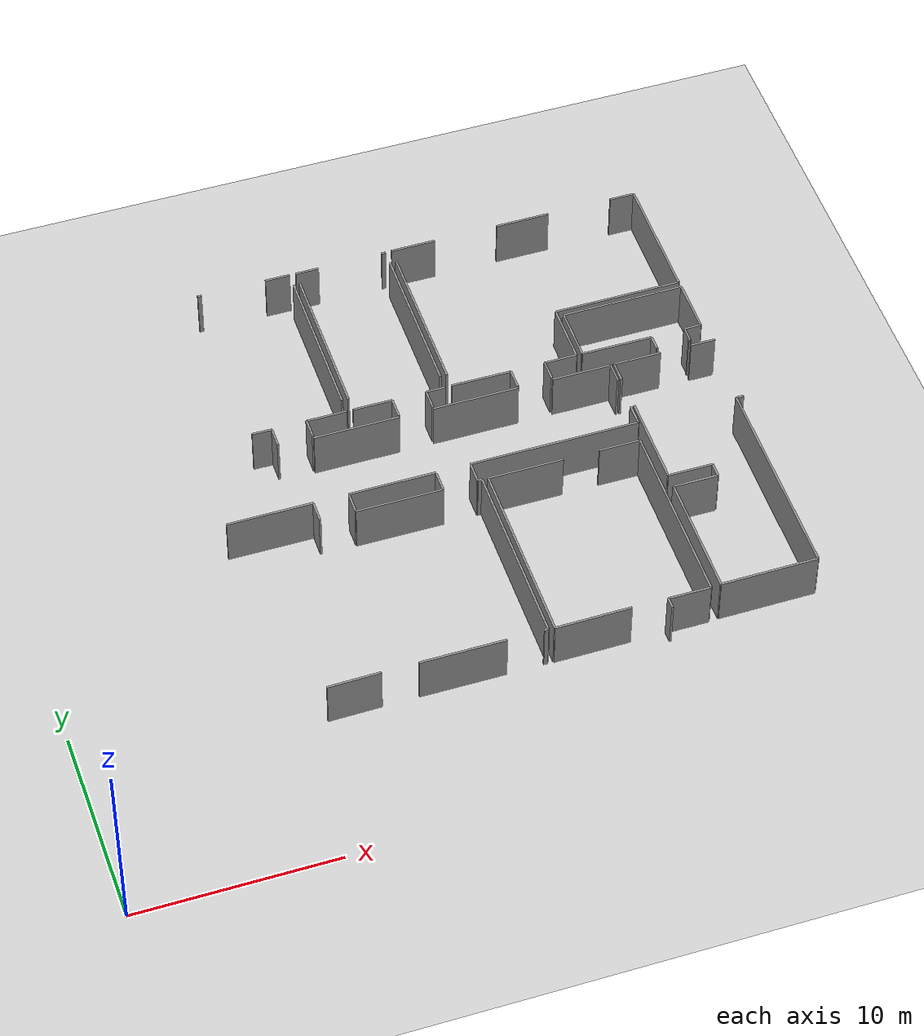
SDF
<sdf version="1.6">
 <world name="default">
  <model name="ground_plane">
   <static>1</static>
   <link name="link">
    <collision name="collision">
     <geometry><plane><normal>0 0 1</normal><size>100 100</size></plane></geometry>
     <surface><friction><ode><mu>100</mu><mu2>50</mu2></ode></friction></surface>
    </collision>
    <visual name="visual">
     <cast_shadows>0</cast_shadows>
     <geometry><plane><normal>0 0 1</normal><size>100 100</size></plane></geometry>
     <material>
      <script><uri>file://media/materials/scripts/gazebo.material</uri><name>Gazebo/Grey</name></script>
     </material>
    </visual>
   </link>
  </model>
  <model name="50052750">
   <static>1</static>
   <link name="Wall_90">
    <collision name="Wall_90_Collision">
     <geometry><box><size>4.26856295905 0.1 2.5</size></box></geometry>
     <pose>2.13428147952 0 1.25 0 0 0</pose>
    </collision>
    <visual name="Wall_90_Visual">
     <pose>2.13428147952 0 1.25 0 0 0</pose>
     <geometry><box><size>4.26856295905 0.1 2.5</size></box></geometry>
     <material>
      <script><uri>file://media/materials/scripts/gazebo.material</uri><name>Gazebo/Grey</name></script>
      <ambient>1 1 1 1</ambient>
     </material>
    </visual>
    <pose>57.8159192543 -10.6099997333 0 0 0 0.0</pose>
   </link>
   <link name="Wall_91">
    <collision name="Wall_91_Collision">
     <geometry><box><size>4.29167815018 0.1 2.5</size></box></geometry>
     <pose>2.14583907509 0 1.25 0 0 0</pose>
    </collision>
    <visual name="Wall_91_Visual">
     <pose>2.14583907509 0 1.25 0 0 0</pose>
     <geometry><box><size>4.29167815018 0.1 2.5</size></box></geometry>
     <material>
      <script><uri>file://media/materials/scripts/gazebo.material</uri><name>Gazebo/Grey</name></script>
      <ambient>1 1 1 1</ambient>
     </material>
    </visual>
    <pose>63.7844648135 -10.6099997333 0 0 0 0.0</pose>
   </link>
   <link name="Wall_92">
    <collision name="Wall_92_Collision">
     <geometry><box><size>2.96280867353 0.1 2.5</size></box></geometry>
     <pose>1.48140433677 0 1.25 0 0 0</pose>
    </collision>
    <visual name="Wall_92_Visual">
     <pose>1.48140433677 0 1.25 0 0 0</pose>
     <geometry><box><size>2.96280867353 0.1 2.5</size></box></geometry>
     <material>
      <script><uri>file://media/materials/scripts/gazebo.material</uri><name>Gazebo/Grey</name></script>
      <ambient>1 1 1 1</ambient>
     </material>
    </visual>
    <pose>69.8222289395 -10.6099997333 0 0 0 0.0</pose>
   </link>
   <link name="Wall_93">
    <collision name="Wall_93_Collision">
     <geometry><box><size>1.0320551818 0.1 2.5</size></box></geometry>
     <pose>0.516027590902 0 1.25 0 0 0</pose>
    </collision>
    <visual name="Wall_93_Visual">
     <pose>0.516027590902 0 1.25 0 0 0</pose>
     <geometry><box><size>1.0320551818 0.1 2.5</size></box></geometry>
     <material>
      <script><uri>file://media/materials/scripts/gazebo.material</uri><name>Gazebo/Grey</name></script>
      <ambient>1 1 1 1</ambient>
     </material>
    </visual>
    <pose>72.785037613 -10.6099997333 0 0 0 -1.57079632679</pose>
   </link>
   <link name="Wall_94">
    <collision name="Wall_94_Collision">
     <geometry><box><size>1.06406083105 0.1 2.5</size></box></geometry>
     <pose>0.532030415527 0 1.25 0 0 0</pose>
    </collision>
    <visual name="Wall_94_Visual">
     <pose>0.532030415527 0 1.25 0 0 0</pose>
     <geometry><box><size>1.06406083105 0.1 2.5</size></box></geometry>
     <material>
      <script><uri>file://media/materials/scripts/gazebo.material</uri><name>Gazebo/Grey</name></script>
      <ambient>1 1 1 1</ambient>
     </material>
    </visual>
    <pose>72.785037613 -13.4262428543 0 0 0 -1.57079632679</pose>
   </link>
   <link name="Wall_95">
    <collision name="Wall_95_Collision">
     <geometry><box><size>8.42828130934 0.1 2.5</size></box></geometry>
     <pose>4.21414065467 0 1.25 0 0 0</pose>
    </collision>
    <visual name="Wall_95_Visual">
     <pose>4.21414065467 0 1.25 0 0 0</pose>
     <geometry><box><size>8.42828130934 0.1 2.5</size></box></geometry>
     <material>
      <script><uri>file://media/materials/scripts/gazebo.material</uri><name>Gazebo/Grey</name></script>
      <ambient>1 1 1 1</ambient>
     </material>
    </visual>
    <pose>72.785037613 -14.4903036853 0 0 0 3.14159265359</pose>
   </link>
   <link name="Wall_96">
    <collision name="Wall_96_Collision">
     <geometry><box><size>4.29383726143 0.1 2.5</size></box></geometry>
     <pose>2.14691863072 0 1.25 0 0 0</pose>
    </collision>
    <visual name="Wall_96_Visual">
     <pose>2.14691863072 0 1.25 0 0 0</pose>
     <geometry><box><size>4.29383726143 0.1 2.5</size></box></geometry>
     <material>
      <script><uri>file://media/materials/scripts/gazebo.material</uri><name>Gazebo/Grey</name></script>
      <ambient>1 1 1 1</ambient>
     </material>
    </visual>
    <pose>62.6464861734 -14.4903036853 0 0 0 3.14159265359</pose>
   </link>
   <link name="Wall_97">
    <collision name="Wall_97_Collision">
     <geometry><box><size>4.23706533598 0.1 2.5</size></box></geometry>
     <pose>2.11853266799 0 1.25 0 0 0</pose>
    </collision>
    <visual name="Wall_97_Visual">
     <pose>2.11853266799 0 1.25 0 0 0</pose>
     <geometry><box><size>4.23706533598 0.1 2.5</size></box></geometry>
     <material>
      <script><uri>file://media/materials/scripts/gazebo.material</uri><name>Gazebo/Grey</name></script>
      <ambient>1 1 1 1</ambient>
     </material>
    </visual>
    <pose>56.6162154336 -14.4903036853 0 0 0 3.14159265359</pose>
   </link>
   <link name="Wall_150">
    <collision name="Wall_150_Collision">
     <geometry><box><size>0.19813020965 0.1 2.5</size></box></geometry>
     <pose>0.0990651048248 0 1.25 0 0 0</pose>
    </collision>
    <visual name="Wall_150_Visual">
     <pose>0.0990651048248 0 1.25 0 0 0</pose>
     <geometry><box><size>0.19813020965 0.1 2.5</size></box></geometry>
     <material>
      <script><uri>file://media/materials/scripts/gazebo.material</uri><name>Gazebo/Grey</name></script>
      <ambient>1 1 1 1</ambient>
     </material>
    </visual>
    <pose>55.0956930811 -0.0161298311702 0 0 0 0.0</pose>
   </link>
   <link name="Wall_151">
    <collision name="Wall_151_Collision">
     <geometry><box><size>1.24555318336 0.1 2.5</size></box></geometry>
     <pose>0.622776591678 0 1.25 0 0 0</pose>
    </collision>
    <visual name="Wall_151_Visual">
     <pose>0.622776591678 0 1.25 0 0 0</pose>
     <geometry><box><size>1.24555318336 0.1 2.5</size></box></geometry>
     <material>
      <script><uri>file://media/materials/scripts/gazebo.material</uri><name>Gazebo/Grey</name></script>
      <ambient>1 1 1 1</ambient>
     </material>
    </visual>
    <pose>58.5571294489 -0.0161298311702 0 0 0 0.0</pose>
   </link>
   <link name="Wall_152">
    <collision name="Wall_152_Collision">
     <geometry><box><size>8.00458747639 0.1 2.5</size></box></geometry>
     <pose>4.0022937382 0 1.25 0 0 0</pose>
    </collision>
    <visual name="Wall_152_Visual">
     <pose>4.0022937382 0 1.25 0 0 0</pose>
     <geometry><box><size>8.00458747639 0.1 2.5</size></box></geometry>
     <material>
      <script><uri>file://media/materials/scripts/gazebo.material</uri><name>Gazebo/Grey</name></script>
      <ambient>1 1 1 1</ambient>
     </material>
    </visual>
    <pose>59.8026826322 -0.742607266552 0 0 0 -1.57079632679</pose>
   </link>
   <link name="Wall_153">
    <collision name="Wall_153_Collision">
     <geometry><box><size>1.99285969206 0.1 2.5</size></box></geometry>
     <pose>0.99642984603 0 1.25 0 0 0</pose>
    </collision>
    <visual name="Wall_153_Visual">
     <pose>0.99642984603 0 1.25 0 0 0</pose>
     <geometry><box><size>1.99285969206 0.1 2.5</size></box></geometry>
     <material>
      <script><uri>file://media/materials/scripts/gazebo.material</uri><name>Gazebo/Grey</name></script>
      <ambient>1 1 1 1</ambient>
     </material>
    </visual>
    <pose>59.8026826322 -9.482689643 0 0 0 3.14159265359</pose>
   </link>
   <link name="Wall_154">
    <collision name="Wall_154_Collision">
     <geometry><box><size>1.02519682839 0.1 2.5</size></box></geometry>
     <pose>0.512598414196 0 1.25 0 0 0</pose>
    </collision>
    <visual name="Wall_154_Visual">
     <pose>0.512598414196 0 1.25 0 0 0</pose>
     <geometry><box><size>1.02519682839 0.1 2.5</size></box></geometry>
     <material>
      <script><uri>file://media/materials/scripts/gazebo.material</uri><name>Gazebo/Grey</name></script>
      <ambient>1 1 1 1</ambient>
     </material>
    </visual>
    <pose>57.8098229402 -9.482689643 0 0 0 -1.57079632679</pose>
   </link>
   <link name="Wall_155">
    <collision name="Wall_155_Collision">
     <geometry><box><size>1.01732242262 0.1 2.5</size></box></geometry>
     <pose>0.508661211312 0 1.25 0 0 0</pose>
    </collision>
    <visual name="Wall_155_Visual">
     <pose>0.508661211312 0 1.25 0 0 0</pose>
     <geometry><box><size>1.01732242262 0.1 2.5</size></box></geometry>
     <material>
      <script><uri>file://media/materials/scripts/gazebo.material</uri><name>Gazebo/Grey</name></script>
      <ambient>1 1 1 1</ambient>
     </material>
    </visual>
    <pose>56.0822799199 -10.5078864714 0 0 0 1.57079632679</pose>
   </link>
   <link name="Wall_156">
    <collision name="Wall_156_Collision">
     <geometry><box><size>0.986783223254 0.1 2.5</size></box></geometry>
     <pose>0.493391611627 0 1.25 0 0 0</pose>
    </collision>
    <visual name="Wall_156_Visual">
     <pose>0.493391611627 0 1.25 0 0 0</pose>
     <geometry><box><size>0.986783223254 0.1 2.5</size></box></geometry>
     <material>
      <script><uri>file://media/materials/scripts/gazebo.material</uri><name>Gazebo/Grey</name></script>
      <ambient>1 1 1 1</ambient>
     </material>
    </visual>
    <pose>56.0822799199 -9.49056404877 0 0 0 3.1216416451</pose>
   </link>
   <link name="Wall_157">
    <collision name="Wall_157_Collision">
     <geometry><box><size>8.01665309813 0.1 2.5</size></box></geometry>
     <pose>4.00832654907 0 1.25 0 0 0</pose>
    </collision>
    <visual name="Wall_157_Visual">
     <pose>4.00832654907 0 1.25 0 0 0</pose>
     <geometry><box><size>8.01665309813 0.1 2.5</size></box></geometry>
     <material>
      <script><uri>file://media/materials/scripts/gazebo.material</uri><name>Gazebo/Grey</name></script>
      <ambient>1 1 1 1</ambient>
     </material>
    </visual>
    <pose>60.1195639611 -8.7553231618 0 0 0 1.57079632679</pose>
   </link>
   <link name="Wall_158">
    <collision name="Wall_158_Collision">
     <geometry><box><size>1.16604708641 0.1 2.5</size></box></geometry>
     <pose>0.583023543203 0 1.25 0 0 0</pose>
    </collision>
    <visual name="Wall_158_Visual">
     <pose>0.583023543203 0 1.25 0 0 0</pose>
     <geometry><box><size>1.16604708641 0.1 2.5</size></box></geometry>
     <material>
      <script><uri>file://media/materials/scripts/gazebo.material</uri><name>Gazebo/Grey</name></script>
      <ambient>1 1 1 1</ambient>
     </material>
    </visual>
    <pose>60.1195639611 -0.0271794005545 0 0 0 0.0</pose>
   </link>
   <link name="Wall_159">
    <collision name="Wall_159_Collision">
     <geometry><box><size>0.20689366123 0.1 2.5</size></box></geometry>
     <pose>0.103446830615 0 1.25 0 0 0</pose>
    </collision>
    <visual name="Wall_159_Visual">
     <pose>0.103446830615 0 1.25 0 0 0</pose>
     <geometry><box><size>0.20689366123 0.1 2.5</size></box></geometry>
     <material>
      <script><uri>file://media/materials/scripts/gazebo.material</uri><name>Gazebo/Grey</name></script>
      <ambient>1 1 1 1</ambient>
     </material>
    </visual>
    <pose>64.5494252319 -0.0271794005545 0 0 0 0.0</pose>
   </link>
   <link name="Wall_160">
    <collision name="Wall_160_Collision">
     <geometry><box><size>7.98947369758 0.1 2.5</size></box></geometry>
     <pose>3.99473684879 0 1.25 0 0 0</pose>
    </collision>
    <visual name="Wall_160_Visual">
     <pose>3.99473684879 0 1.25 0 0 0</pose>
     <geometry><box><size>7.98947369758 0.1 2.5</size></box></geometry>
     <material>
      <script><uri>file://media/materials/scripts/gazebo.material</uri><name>Gazebo/Grey</name></script>
      <ambient>1 1 1 1</ambient>
     </material>
    </visual>
    <pose>64.7563188931 -0.757721045365 0 0 0 -1.57079632679</pose>
   </link>
   <link name="Wall_161">
    <collision name="Wall_161_Collision">
     <geometry><box><size>0.960550497167 0.1 2.5</size></box></geometry>
     <pose>0.480275248584 0 1.25 0 0 0</pose>
    </collision>
    <visual name="Wall_161_Visual">
     <pose>0.480275248584 0 1.25 0 0 0</pose>
     <geometry><box><size>0.960550497167 0.1 2.5</size></box></geometry>
     <material>
      <script><uri>file://media/materials/scripts/gazebo.material</uri><name>Gazebo/Grey</name></script>
      <ambient>1 1 1 1</ambient>
     </material>
    </visual>
    <pose>64.7563188931 -9.48599181316 0 0 0 3.14159265359</pose>
   </link>
   <link name="Wall_162">
    <collision name="Wall_162_Collision">
     <geometry><box><size>1.02595886766 0.1 2.5</size></box></geometry>
     <pose>0.51297943383 0 1.25 0 0 0</pose>
    </collision>
    <visual name="Wall_162_Visual">
     <pose>0.51297943383 0 1.25 0 0 0</pose>
     <geometry><box><size>1.02595886766 0.1 2.5</size></box></geometry>
     <material>
      <script><uri>file://media/materials/scripts/gazebo.material</uri><name>Gazebo/Grey</name></script>
      <ambient>1 1 1 1</ambient>
     </material>
    </visual>
    <pose>63.7957683959 -9.48599181316 0 0 0 -1.57079632679</pose>
   </link>
   <link name="Wall_163">
    <collision name="Wall_163_Collision">
     <geometry><box><size>1.02926103782 0.1 2.5</size></box></geometry>
     <pose>0.514630518911 0 1.25 0 0 0</pose>
    </collision>
    <visual name="Wall_163_Visual">
     <pose>0.514630518911 0 1.25 0 0 0</pose>
     <geometry><box><size>1.02926103782 0.1 2.5</size></box></geometry>
     <material>
      <script><uri>file://media/materials/scripts/gazebo.material</uri><name>Gazebo/Grey</name></script>
      <ambient>1 1 1 1</ambient>
     </material>
    </visual>
    <pose>62.0877843835 -10.5119506808 0 0 0 1.57079632679</pose>
   </link>
   <link name="Wall_164">
    <collision name="Wall_164_Collision">
     <geometry><box><size>1.96822633958 0.1 2.5</size></box></geometry>
     <pose>0.984113169791 0 1.25 0 0 0</pose>
    </collision>
    <visual name="Wall_164_Visual">
     <pose>0.984113169791 0 1.25 0 0 0</pose>
     <geometry><box><size>1.96822633958 0.1 2.5</size></box></geometry>
     <material>
      <script><uri>file://media/materials/scripts/gazebo.material</uri><name>Gazebo/Grey</name></script>
      <ambient>1 1 1 1</ambient>
     </material>
    </visual>
    <pose>62.0877843835 -9.482689643 0 0 0 -3.139140571</pose>
   </link>
   <link name="Wall_165">
    <collision name="Wall_165_Collision">
     <geometry><box><size>7.97664603657 0.1 2.5</size></box></geometry>
     <pose>3.98832301829 0 1.25 0 0 0</pose>
    </collision>
    <visual name="Wall_165_Visual">
     <pose>3.98832301829 0 1.25 0 0 0</pose>
     <geometry><box><size>7.97664603657 0.1 2.5</size></box></geometry>
     <material>
      <script><uri>file://media/materials/scripts/gazebo.material</uri><name>Gazebo/Grey</name></script>
      <ambient>1 1 1 1</ambient>
     </material>
    </visual>
    <pose>65.0800585754 -8.73601816702 0 0 0 1.57079632679</pose>
   </link>
   <link name="Wall_166">
    <collision name="Wall_166_Collision">
     <geometry><box><size>2.23214002218 0.1 2.5</size></box></geometry>
     <pose>1.11607001109 0 1.25 0 0 0</pose>
    </collision>
    <visual name="Wall_166_Visual">
     <pose>1.11607001109 0 1.25 0 0 0</pose>
     <geometry><box><size>2.23214002218 0.1 2.5</size></box></geometry>
     <material>
      <script><uri>file://media/materials/scripts/gazebo.material</uri><name>Gazebo/Grey</name></script>
      <ambient>1 1 1 1</ambient>
     </material>
    </visual>
    <pose>65.0800585754 -0.00800141231278 0 0 0 0.0</pose>
   </link>
   <link name="Wall_167">
    <collision name="Wall_167_Collision">
     <geometry><box><size>2.71641597692 0.1 2.5</size></box></geometry>
     <pose>1.35820798846 0 1.25 0 0 0</pose>
    </collision>
    <visual name="Wall_167_Visual">
     <pose>1.35820798846 0 1.25 0 0 0</pose>
     <geometry><box><size>2.71641597692 0.1 2.5</size></box></geometry>
     <material>
      <script><uri>file://media/materials/scripts/gazebo.material</uri><name>Gazebo/Grey</name></script>
      <ambient>1 1 1 1</ambient>
     </material>
    </visual>
    <pose>70.5636931471 -0.00800141231278 0 0 0 0.0</pose>
   </link>
   <link name="Wall_168">
    <collision name="Wall_168_Collision">
     <geometry><box><size>1.26193702762 0.1 2.5</size></box></geometry>
     <pose>0.630968513808 0 1.25 0 0 0</pose>
    </collision>
    <visual name="Wall_168_Visual">
     <pose>0.630968513808 0 1.25 0 0 0</pose>
     <geometry><box><size>1.26193702762 0.1 2.5</size></box></geometry>
     <material>
      <script><uri>file://media/materials/scripts/gazebo.material</uri><name>Gazebo/Grey</name></script>
      <ambient>1 1 1 1</ambient>
     </material>
    </visual>
    <pose>76.5698326435 -0.00800141231278 0 0 0 0.0</pose>
   </link>
   <link name="Wall_169">
    <collision name="Wall_169_Collision">
     <geometry><box><size>6.44113691179 0.1 2.5</size></box></geometry>
     <pose>3.22056845589 0 1.25 0 0 0</pose>
    </collision>
    <visual name="Wall_169_Visual">
     <pose>3.22056845589 0 1.25 0 0 0</pose>
     <geometry><box><size>6.44113691179 0.1 2.5</size></box></geometry>
     <material>
      <script><uri>file://media/materials/scripts/gazebo.material</uri><name>Gazebo/Grey</name></script>
      <ambient>1 1 1 1</ambient>
     </material>
    </visual>
    <pose>77.8317696711 -0.00800141231278 0 0 0 -1.57079632679</pose>
   </link>
   <link name="Wall_170">
    <collision name="Wall_170_Collision">
     <geometry><box><size>6.39909774551 0.1 2.5</size></box></geometry>
     <pose>3.19954887275 0 1.25 0 0 0</pose>
    </collision>
    <visual name="Wall_170_Visual">
     <pose>3.19954887275 0 1.25 0 0 0</pose>
     <geometry><box><size>6.39909774551 0.1 2.5</size></box></geometry>
     <material>
      <script><uri>file://media/materials/scripts/gazebo.material</uri><name>Gazebo/Grey</name></script>
      <ambient>1 1 1 1</ambient>
     </material>
    </visual>
    <pose>77.8317696711 -6.4491383241 0 0 0 3.14159265359</pose>
   </link>
   <link name="Wall_171">
    <collision name="Wall_171_Collision">
     <geometry><box><size>3.02237474297 0.1 2.5</size></box></geometry>
     <pose>1.51118737149 0 1.25 0 0 0</pose>
    </collision>
    <visual name="Wall_171_Visual">
     <pose>1.51118737149 0 1.25 0 0 0</pose>
     <geometry><box><size>3.02237474297 0.1 2.5</size></box></geometry>
     <material>
      <script><uri>file://media/materials/scripts/gazebo.material</uri><name>Gazebo/Grey</name></script>
      <ambient>1 1 1 1</ambient>
     </material>
    </visual>
    <pose>71.4326719256 -6.4491383241 0 0 0 -1.57079632679</pose>
   </link>
   <link name="Wall_172">
    <collision name="Wall_172_Collision">
     <geometry><box><size>1.6194604508 0.1 2.5</size></box></geometry>
     <pose>0.809730225399 0 1.25 0 0 0</pose>
    </collision>
    <visual name="Wall_172_Visual">
     <pose>0.809730225399 0 1.25 0 0 0</pose>
     <geometry><box><size>1.6194604508 0.1 2.5</size></box></geometry>
     <material>
      <script><uri>file://media/materials/scripts/gazebo.material</uri><name>Gazebo/Grey</name></script>
      <ambient>1 1 1 1</ambient>
     </material>
    </visual>
    <pose>71.4326719256 -9.47151306707 0 0 0 3.14159265359</pose>
   </link>
   <link name="Wall_173">
    <collision name="Wall_173_Collision">
     <geometry><box><size>1.03065810981 0.1 2.5</size></box></geometry>
     <pose>0.515329054906 0 1.25 0 0 0</pose>
    </collision>
    <visual name="Wall_173_Visual">
     <pose>0.515329054906 0 1.25 0 0 0</pose>
     <geometry><box><size>1.03065810981 0.1 2.5</size></box></geometry>
     <material>
      <script><uri>file://media/materials/scripts/gazebo.material</uri><name>Gazebo/Grey</name></script>
      <ambient>1 1 1 1</ambient>
     </material>
    </visual>
    <pose>69.8132114748 -9.47151306707 0 0 0 -1.57079632679</pose>
   </link>
   <link name="Wall_174">
    <collision name="Wall_174_Collision">
     <geometry><box><size>0.99725538857 0.1 2.5</size></box></geometry>
     <pose>0.498627694285 0 1.25 0 0 0</pose>
    </collision>
    <visual name="Wall_174_Visual">
     <pose>0.498627694285 0 1.25 0 0 0</pose>
     <geometry><box><size>0.99725538857 0.1 2.5</size></box></geometry>
     <material>
      <script><uri>file://media/materials/scripts/gazebo.material</uri><name>Gazebo/Grey</name></script>
      <ambient>1 1 1 1</ambient>
     </material>
    </visual>
    <pose>68.0809692123 -10.5021711769 0 0 0 1.57079632679</pose>
   </link>
   <link name="Wall_175">
    <collision name="Wall_175_Collision">
     <geometry><box><size>3.0011036669 0.1 2.5</size></box></geometry>
     <pose>1.50055183345 0 1.25 0 0 0</pose>
    </collision>
    <visual name="Wall_175_Visual">
     <pose>1.50055183345 0 1.25 0 0 0</pose>
     <geometry><box><size>3.0011036669 0.1 2.5</size></box></geometry>
     <material>
      <script><uri>file://media/materials/scripts/gazebo.material</uri><name>Gazebo/Grey</name></script>
      <ambient>1 1 1 1</ambient>
     </material>
    </visual>
    <pose>68.0809692123 -9.50491578831 0 0 0 3.13025066493</pose>
   </link>
   <link name="Wall_176">
    <collision name="Wall_176_Collision">
     <geometry><box><size>2.70320729627 0.1 2.5</size></box></geometry>
     <pose>1.35160364814 0 1.25 0 0 0</pose>
    </collision>
    <visual name="Wall_176_Visual">
     <pose>1.35160364814 0 1.25 0 0 0</pose>
     <geometry><box><size>2.70320729627 0.1 2.5</size></box></geometry>
     <material>
      <script><uri>file://media/materials/scripts/gazebo.material</uri><name>Gazebo/Grey</name></script>
      <ambient>1 1 1 1</ambient>
     </material>
    </visual>
    <pose>71.7318993448 -9.4767203354 0 0 0 1.57079632679</pose>
   </link>
   <link name="Wall_177">
    <collision name="Wall_177_Collision">
     <geometry><box><size>6.1134600266 0.1 2.5</size></box></geometry>
     <pose>3.0567300133 0 1.25 0 0 0</pose>
    </collision>
    <visual name="Wall_177_Visual">
     <pose>3.0567300133 0 1.25 0 0 0</pose>
     <geometry><box><size>6.1134600266 0.1 2.5</size></box></geometry>
     <material>
      <script><uri>file://media/materials/scripts/gazebo.material</uri><name>Gazebo/Grey</name></script>
      <ambient>1 1 1 1</ambient>
     </material>
    </visual>
    <pose>71.7318993448 -6.77351303913 0 0 0 0.0</pose>
   </link>
   <link name="Wall_178">
    <collision name="Wall_178_Collision">
     <geometry><box><size>2.70917660387 0.1 2.5</size></box></geometry>
     <pose>1.35458830194 0 1.25 0 0 0</pose>
    </collision>
    <visual name="Wall_178_Visual">
     <pose>1.35458830194 0 1.25 0 0 0</pose>
     <geometry><box><size>2.70917660387 0.1 2.5</size></box></geometry>
     <material>
      <script><uri>file://media/materials/scripts/gazebo.material</uri><name>Gazebo/Grey</name></script>
      <ambient>1 1 1 1</ambient>
     </material>
    </visual>
    <pose>77.8453593714 -6.77351303913 0 0 0 -1.57079632679</pose>
   </link>
   <link name="Wall_179">
    <collision name="Wall_179_Collision">
     <geometry><box><size>0.833416945975 0.1 2.5</size></box></geometry>
     <pose>0.416708472988 0 1.25 0 0 0</pose>
    </collision>
    <visual name="Wall_179_Visual">
     <pose>0.416708472988 0 1.25 0 0 0</pose>
     <geometry><box><size>0.833416945975 0.1 2.5</size></box></geometry>
     <material>
      <script><uri>file://media/materials/scripts/gazebo.material</uri><name>Gazebo/Grey</name></script>
      <ambient>1 1 1 1</ambient>
     </material>
    </visual>
    <pose>77.8453593714 -9.482689643 0 0 0 3.14159265359</pose>
   </link>
   <link name="Wall_180">
    <collision name="Wall_180_Collision">
     <geometry><box><size>0.779693177589 0.1 2.5</size></box></geometry>
     <pose>0.389846588795 0 1.25 0 0 0</pose>
    </collision>
    <visual name="Wall_180_Visual">
     <pose>0.389846588795 0 1.25 0 0 0</pose>
     <geometry><box><size>0.779693177589 0.1 2.5</size></box></geometry>
     <material>
      <script><uri>file://media/materials/scripts/gazebo.material</uri><name>Gazebo/Grey</name></script>
      <ambient>1 1 1 1</ambient>
     </material>
    </visual>
    <pose>77.0119424254 -9.482689643 0 0 0 -1.57079632679</pose>
   </link>
   <link name="Wall_181">
    <collision name="Wall_181_Collision">
     <geometry><box><size>0.0933498103157 0.1 2.5</size></box></geometry>
     <pose>0.0466749051579 0 1.25 0 0 0</pose>
    </collision>
    <visual name="Wall_181_Visual">
     <pose>0.0466749051579 0 1.25 0 0 0</pose>
     <geometry><box><size>0.0933498103157 0.1 2.5</size></box></geometry>
     <material>
      <script><uri>file://media/materials/scripts/gazebo.material</uri><name>Gazebo/Grey</name></script>
      <ambient>1 1 1 1</ambient>
     </material>
    </visual>
    <pose>77.0119424254 -10.2623828206 0 0 0 3.14159265359</pose>
   </link>
   <link name="Wall_182">
    <collision name="Wall_182_Collision">
     <geometry><box><size>0.0657893901273 0.1 2.5</size></box></geometry>
     <pose>0.0328946950636 0 1.25 0 0 0</pose>
    </collision>
    <visual name="Wall_182_Visual">
     <pose>0.0328946950636 0 1.25 0 0 0</pose>
     <geometry><box><size>0.0657893901273 0.1 2.5</size></box></geometry>
     <material>
      <script><uri>file://media/materials/scripts/gazebo.material</uri><name>Gazebo/Grey</name></script>
      <ambient>1 1 1 1</ambient>
     </material>
    </visual>
    <pose>75.3536179719 -10.2623828206 0 0 0 3.14159265359</pose>
   </link>
   <link name="Wall_183">
    <collision name="Wall_183_Collision">
     <geometry><box><size>0.763182326785 0.1 2.5</size></box></geometry>
     <pose>0.381591163393 0 1.25 0 0 0</pose>
    </collision>
    <visual name="Wall_183_Visual">
     <pose>0.381591163393 0 1.25 0 0 0</pose>
     <geometry><box><size>0.763182326785 0.1 2.5</size></box></geometry>
     <material>
      <script><uri>file://media/materials/scripts/gazebo.material</uri><name>Gazebo/Grey</name></script>
      <ambient>1 1 1 1</ambient>
     </material>
    </visual>
    <pose>75.2878285818 -10.2623828206 0 0 0 1.57079632679</pose>
   </link>
   <link name="Wall_184">
    <collision name="Wall_184_Collision">
     <geometry><box><size>3.55600029476 0.1 2.5</size></box></geometry>
     <pose>1.77800014738 0 1.25 0 0 0</pose>
    </collision>
    <visual name="Wall_184_Visual">
     <pose>1.77800014738 0 1.25 0 0 0</pose>
     <geometry><box><size>3.55600029476 0.1 2.5</size></box></geometry>
     <material>
      <script><uri>file://media/materials/scripts/gazebo.material</uri><name>Gazebo/Grey</name></script>
      <ambient>1 1 1 1</ambient>
     </material>
    </visual>
    <pose>75.2878285818 -9.4992004938 0 0 0 3.13527085767</pose>
   </link>
   <link name="Wall_185">
    <collision name="Wall_185_Collision">
     <geometry><box><size>6.22713088405 0.1 2.5</size></box></geometry>
     <pose>3.11356544203 0 1.25 0 0 0</pose>
    </collision>
    <visual name="Wall_185_Visual">
     <pose>3.11356544203 0 1.25 0 0 0</pose>
     <geometry><box><size>6.22713088405 0.1 2.5</size></box></geometry>
     <material>
      <script><uri>file://media/materials/scripts/gazebo.material</uri><name>Gazebo/Grey</name></script>
      <ambient>1 1 1 1</ambient>
     </material>
    </visual>
    <pose>72.9707211813 -25.0147010075 0 0 0 1.57079632679</pose>
   </link>
   <link name="Wall_186">
    <collision name="Wall_186_Collision">
     <geometry><box><size>2.22515466222 0.1 2.5</size></box></geometry>
     <pose>1.11257733111 0 1.25 0 0 0</pose>
    </collision>
    <visual name="Wall_186_Visual">
     <pose>1.11257733111 0 1.25 0 0 0</pose>
     <geometry><box><size>2.22515466222 0.1 2.5</size></box></geometry>
     <material>
      <script><uri>file://media/materials/scripts/gazebo.material</uri><name>Gazebo/Grey</name></script>
      <ambient>1 1 1 1</ambient>
     </material>
    </visual>
    <pose>72.9707211813 -18.7875701235 0 0 0 0.0</pose>
   </link>
   <link name="Wall_187">
    <collision name="Wall_187_Collision">
     <geometry><box><size>0.718984049248 0.1 2.5</size></box></geometry>
     <pose>0.359492024624 0 1.25 0 0 0</pose>
    </collision>
    <visual name="Wall_187_Visual">
     <pose>0.359492024624 0 1.25 0 0 0</pose>
     <geometry><box><size>0.718984049248 0.1 2.5</size></box></geometry>
     <material>
      <script><uri>file://media/materials/scripts/gazebo.material</uri><name>Gazebo/Grey</name></script>
      <ambient>1 1 1 1</ambient>
     </material>
    </visual>
    <pose>75.1958758435 -18.7875701235 0 0 0 1.57079632679</pose>
   </link>
   <link name="Wall_188">
    <collision name="Wall_188_Collision">
     <geometry><box><size>2.22934587819 0.1 2.5</size></box></geometry>
     <pose>1.1146729391 0 1.25 0 0 0</pose>
    </collision>
    <visual name="Wall_188_Visual">
     <pose>1.1146729391 0 1.25 0 0 0</pose>
     <geometry><box><size>2.22934587819 0.1 2.5</size></box></geometry>
     <material>
      <script><uri>file://media/materials/scripts/gazebo.material</uri><name>Gazebo/Grey</name></script>
      <ambient>1 1 1 1</ambient>
     </material>
    </visual>
    <pose>75.1958758435 -18.0685860742 0 0 0 3.14159265359</pose>
   </link>
   <link name="Wall_189">
    <collision name="Wall_189_Collision">
     <geometry><box><size>4.64742348173 0.1 2.5</size></box></geometry>
     <pose>2.32371174087 0 1.25 0 0 0</pose>
    </collision>
    <visual name="Wall_189_Visual">
     <pose>2.32371174087 0 1.25 0 0 0</pose>
     <geometry><box><size>4.64742348173 0.1 2.5</size></box></geometry>
     <material>
      <script><uri>file://media/materials/scripts/gazebo.material</uri><name>Gazebo/Grey</name></script>
      <ambient>1 1 1 1</ambient>
     </material>
    </visual>
    <pose>72.9665299653 -18.0685860742 0 0 0 1.57079632679</pose>
   </link>
   <link name="Wall_190">
    <collision name="Wall_190_Collision">
     <geometry><box><size>1.04361277737 0.1 2.5</size></box></geometry>
     <pose>0.521806388683 0 1.25 0 0 0</pose>
    </collision>
    <visual name="Wall_190_Visual">
     <pose>0.521806388683 0 1.25 0 0 0</pose>
     <geometry><box><size>1.04361277737 0.1 2.5</size></box></geometry>
     <material>
      <script><uri>file://media/materials/scripts/gazebo.material</uri><name>Gazebo/Grey</name></script>
      <ambient>1 1 1 1</ambient>
     </material>
    </visual>
    <pose>72.9665299653 -11.64040383 0 0 0 1.57079632679</pose>
   </link>
   <link name="Wall_191">
    <collision name="Wall_191_Collision">
     <geometry><box><size>2.38619896083 0.1 2.5</size></box></geometry>
     <pose>1.19309948042 0 1.25 0 0 0</pose>
    </collision>
    <visual name="Wall_191_Visual">
     <pose>1.19309948042 0 1.25 0 0 0</pose>
     <geometry><box><size>2.38619896083 0.1 2.5</size></box></geometry>
     <material>
      <script><uri>file://media/materials/scripts/gazebo.material</uri><name>Gazebo/Grey</name></script>
      <ambient>1 1 1 1</ambient>
     </material>
    </visual>
    <pose>72.9665299653 -10.5967910526 0 0 0 0.0</pose>
   </link>
   <link name="Wall_192">
    <collision name="Wall_192_Collision">
     <geometry><box><size>1.24644222917 0.1 2.5</size></box></geometry>
     <pose>0.623221114584 0 1.25 0 0 0</pose>
    </collision>
    <visual name="Wall_192_Visual">
     <pose>0.623221114584 0 1.25 0 0 0</pose>
     <geometry><box><size>1.24644222917 0.1 2.5</size></box></geometry>
     <material>
      <script><uri>file://media/materials/scripts/gazebo.material</uri><name>Gazebo/Grey</name></script>
      <ambient>1 1 1 1</ambient>
     </material>
    </visual>
    <pose>76.9130043271 -10.5967910526 0 0 0 0.0</pose>
   </link>
   <link name="Wall_193">
    <collision name="Wall_193_Collision">
     <geometry><box><size>0.377336444147 0.1 2.5</size></box></geometry>
     <pose>0.188668222073 0 1.25 0 0 0</pose>
    </collision>
    <visual name="Wall_193_Visual">
     <pose>0.188668222073 0 1.25 0 0 0</pose>
     <geometry><box><size>0.377336444147 0.1 2.5</size></box></geometry>
     <material>
      <script><uri>file://media/materials/scripts/gazebo.material</uri><name>Gazebo/Grey</name></script>
      <ambient>1 1 1 1</ambient>
     </material>
    </visual>
    <pose>78.1594465563 -14.4704906644 0 0 0 3.14159265359</pose>
   </link>
   <link name="Wall_194">
    <collision name="Wall_194_Collision">
     <geometry><box><size>10.5158878837 0.1 2.5</size></box></geometry>
     <pose>5.25794394185 0 1.25 0 0 0</pose>
    </collision>
    <visual name="Wall_194_Visual">
     <pose>5.25794394185 0 1.25 0 0 0</pose>
     <geometry><box><size>10.5158878837 0.1 2.5</size></box></geometry>
     <material>
      <script><uri>file://media/materials/scripts/gazebo.material</uri><name>Gazebo/Grey</name></script>
      <ambient>1 1 1 1</ambient>
     </material>
    </visual>
    <pose>77.7821101121 -14.4704906644 0 0 0 -1.57079632679</pose>
   </link>
   <link name="Wall_195">
    <collision name="Wall_195_Collision">
     <geometry><box><size>4.81147229087 0.1 2.5</size></box></geometry>
     <pose>2.40573614544 0 1.25 0 0 0</pose>
    </collision>
    <visual name="Wall_195_Visual">
     <pose>2.40573614544 0 1.25 0 0 0</pose>
     <geometry><box><size>4.81147229087 0.1 2.5</size></box></geometry>
     <material>
      <script><uri>file://media/materials/scripts/gazebo.material</uri><name>Gazebo/Grey</name></script>
      <ambient>1 1 1 1</ambient>
     </material>
    </visual>
    <pose>77.7821101121 -24.9863785481 0 0 0 -3.13570617616</pose>
   </link>
   <link name="Wall_196">
    <collision name="Wall_196_Collision">
     <geometry><box><size>9.47926046629 0.1 2.5</size></box></geometry>
     <pose>4.73963023315 0 1.25 0 0 0</pose>
    </collision>
    <visual name="Wall_196_Visual">
     <pose>4.73963023315 0 1.25 0 0 0</pose>
     <geometry><box><size>9.47926046629 0.1 2.5</size></box></geometry>
     <material>
      <script><uri>file://media/materials/scripts/gazebo.material</uri><name>Gazebo/Grey</name></script>
      <ambient>1 1 1 1</ambient>
     </material>
    </visual>
    <pose>64.8749430058 -25.0638525403 0 0 0 1.57079632679</pose>
   </link>
   <link name="Wall_197">
    <collision name="Wall_197_Collision">
     <geometry><box><size>3.7358975108 0.1 2.5</size></box></geometry>
     <pose>1.8679487554 0 1.25 0 0 0</pose>
    </collision>
    <visual name="Wall_197_Visual">
     <pose>1.8679487554 0 1.25 0 0 0</pose>
     <geometry><box><size>3.7358975108 0.1 2.5</size></box></geometry>
     <material>
      <script><uri>file://media/materials/scripts/gazebo.material</uri><name>Gazebo/Grey</name></script>
      <ambient>1 1 1 1</ambient>
     </material>
    </visual>
    <pose>64.8749430058 -15.584592074 0 0 0 0.0</pose>
   </link>
   <link name="Wall_198">
    <collision name="Wall_198_Collision">
     <geometry><box><size>2.05521990548 0.1 2.5</size></box></geometry>
     <pose>1.02760995274 0 1.25 0 0 0</pose>
    </collision>
    <visual name="Wall_198_Visual">
     <pose>1.02760995274 0 1.25 0 0 0</pose>
     <geometry><box><size>2.05521990548 0.1 2.5</size></box></geometry>
     <material>
      <script><uri>file://media/materials/scripts/gazebo.material</uri><name>Gazebo/Grey</name></script>
      <ambient>1 1 1 1</ambient>
     </material>
    </visual>
    <pose>70.4162385488 -15.584592074 0 0 0 0.0</pose>
   </link>
   <link name="Wall_199">
    <collision name="Wall_199_Collision">
     <geometry><box><size>9.46897293618 0.1 2.5</size></box></geometry>
     <pose>4.73448646809 0 1.25 0 0 0</pose>
    </collision>
    <visual name="Wall_199_Visual">
     <pose>4.73448646809 0 1.25 0 0 0</pose>
     <geometry><box><size>9.46897293618 0.1 2.5</size></box></geometry>
     <material>
      <script><uri>file://media/materials/scripts/gazebo.material</uri><name>Gazebo/Grey</name></script>
      <ambient>1 1 1 1</ambient>
     </material>
    </visual>
    <pose>72.4714584543 -15.584592074 0 0 0 -1.57079632679</pose>
   </link>
   <link name="Wall_200">
    <collision name="Wall_200_Collision">
     <geometry><box><size>2.09357588197 0.1 2.5</size></box></geometry>
     <pose>1.04678794098 0 1.25 0 0 0</pose>
    </collision>
    <visual name="Wall_200_Visual">
     <pose>1.04678794098 0 1.25 0 0 0</pose>
     <geometry><box><size>2.09357588197 0.1 2.5</size></box></geometry>
     <material>
      <script><uri>file://media/materials/scripts/gazebo.material</uri><name>Gazebo/Grey</name></script>
      <ambient>1 1 1 1</ambient>
     </material>
    </visual>
    <pose>72.4714584543 -25.0535650102 0 0 0 3.14159265359</pose>
   </link>
   <link name="Wall_201">
    <collision name="Wall_201_Collision">
     <geometry><box><size>0.566703202216 0.1 2.5</size></box></geometry>
     <pose>0.283351601108 0 1.25 0 0 0</pose>
    </collision>
    <visual name="Wall_201_Visual">
     <pose>0.283351601108 0 1.25 0 0 0</pose>
     <geometry><box><size>0.566703202216 0.1 2.5</size></box></geometry>
     <material>
      <script><uri>file://media/materials/scripts/gazebo.material</uri><name>Gazebo/Grey</name></script>
      <ambient>1 1 1 1</ambient>
     </material>
    </visual>
    <pose>70.3778825723 -25.0535650102 0 0 0 -1.57079632679</pose>
   </link>
   <link name="Wall_205">
    <collision name="Wall_205_Collision">
     <geometry><box><size>3.74553890355 0.1 2.5</size></box></geometry>
     <pose>1.87276945178 0 1.25 0 0 0</pose>
    </collision>
    <visual name="Wall_205_Visual">
     <pose>1.87276945178 0 1.25 0 0 0</pose>
     <geometry><box><size>3.74553890355 0.1 2.5</size></box></geometry>
     <material>
      <script><uri>file://media/materials/scripts/gazebo.material</uri><name>Gazebo/Grey</name></script>
      <ambient>1 1 1 1</ambient>
     </material>
    </visual>
    <pose>68.6203660075 -25.034387022 0 0 0 -3.1337257423</pose>
   </link>
   <link name="Wall_208">
    <collision name="Wall_208_Collision">
     <geometry><box><size>1.01046406921 0.1 2.5</size></box></geometry>
     <pose>0.505232034607 0 1.25 0 0 0</pose>
    </collision>
    <visual name="Wall_208_Visual">
     <pose>0.505232034607 0 1.25 0 0 0</pose>
     <geometry><box><size>1.01046406921 0.1 2.5</size></box></geometry>
     <material>
      <script><uri>file://media/materials/scripts/gazebo.material</uri><name>Gazebo/Grey</name></script>
      <ambient>1 1 1 1</ambient>
     </material>
    </visual>
    <pose>56.6122782307 -15.5669381643 0 0 0 1.57079632679</pose>
   </link>
   <link name="Wall_209">
    <collision name="Wall_209_Collision">
     <geometry><box><size>1.0320551818 0.1 2.5</size></box></geometry>
     <pose>0.516027590902 0 1.25 0 0 0</pose>
    </collision>
    <visual name="Wall_209_Visual">
     <pose>0.516027590902 0 1.25 0 0 0</pose>
     <geometry><box><size>1.0320551818 0.1 2.5</size></box></geometry>
     <material>
      <script><uri>file://media/materials/scripts/gazebo.material</uri><name>Gazebo/Grey</name></script>
      <ambient>1 1 1 1</ambient>
     </material>
    </visual>
    <pose>58.3488387157 -14.5564740951 0 0 0 -1.57079632679</pose>
   </link>
   <link name="Wall_210">
    <collision name="Wall_210_Collision">
     <geometry><box><size>4.29904452976 0.1 2.5</size></box></geometry>
     <pose>2.14952226488 0 1.25 0 0 0</pose>
    </collision>
    <visual name="Wall_210_Visual">
     <pose>2.14952226488 0 1.25 0 0 0</pose>
     <geometry><box><size>4.29904452976 0.1 2.5</size></box></geometry>
     <material>
      <script><uri>file://media/materials/scripts/gazebo.material</uri><name>Gazebo/Grey</name></script>
      <ambient>1 1 1 1</ambient>
     </material>
    </visual>
    <pose>58.3488387157 -15.5885292769 0 0 0 0.0</pose>
   </link>
   <link name="Wall_211">
    <collision name="Wall_211_Collision">
     <geometry><box><size>1.04323175773 0.1 2.5</size></box></geometry>
     <pose>0.521615878866 0 1.25 0 0 0</pose>
    </collision>
    <visual name="Wall_211_Visual">
     <pose>0.521615878866 0 1.25 0 0 0</pose>
     <geometry><box><size>1.04323175773 0.1 2.5</size></box></geometry>
     <material>
      <script><uri>file://media/materials/scripts/gazebo.material</uri><name>Gazebo/Grey</name></script>
      <ambient>1 1 1 1</ambient>
     </material>
    </visual>
    <pose>62.6478832454 -15.5885292769 0 0 0 1.57079632679</pose>
   </link>
   <link name="Wall_212">
    <collision name="Wall_212_Collision">
     <geometry><box><size>1.02341873677 0.1 2.5</size></box></geometry>
     <pose>0.511709368384 0 1.25 0 0 0</pose>
    </collision>
    <visual name="Wall_212_Visual">
     <pose>0.511709368384 0 1.25 0 0 0</pose>
     <geometry><box><size>1.02341873677 0.1 2.5</size></box></geometry>
     <material>
      <script><uri>file://media/materials/scripts/gazebo.material</uri><name>Gazebo/Grey</name></script>
      <ambient>1 1 1 1</ambient>
     </material>
    </visual>
    <pose>64.3572643298 -14.5452975192 0 0 0 -1.57079632679</pose>
   </link>
   <link name="Wall_213">
    <collision name="Wall_213_Collision">
     <geometry><box><size>0.21426004082 0.1 2.5</size></box></geometry>
     <pose>0.10713002041 0 1.25 0 0 0</pose>
    </collision>
    <visual name="Wall_213_Visual">
     <pose>0.10713002041 0 1.25 0 0 0</pose>
     <geometry><box><size>0.21426004082 0.1 2.5</size></box></geometry>
     <material>
      <script><uri>file://media/materials/scripts/gazebo.material</uri><name>Gazebo/Grey</name></script>
      <ambient>1 1 1 1</ambient>
     </material>
    </visual>
    <pose>64.3572643298 -15.5687162559 0 0 0 0.0</pose>
   </link>
   <link name="Wall_214">
    <collision name="Wall_214_Collision">
     <geometry><box><size>9.4696079689 0.1 2.5</size></box></geometry>
     <pose>4.73480398445 0 1.25 0 0 0</pose>
    </collision>
    <visual name="Wall_214_Visual">
     <pose>4.73480398445 0 1.25 0 0 0</pose>
     <geometry><box><size>9.4696079689 0.1 2.5</size></box></geometry>
     <material>
      <script><uri>file://media/materials/scripts/gazebo.material</uri><name>Gazebo/Grey</name></script>
      <ambient>1 1 1 1</ambient>
     </material>
    </visual>
    <pose>64.5715243707 -15.5687162559 0 0 0 -1.57079632679</pose>
   </link>
   <link name="Wall_215">
    <collision name="Wall_215_Collision">
     <geometry><box><size>0.194066000221 0.1 2.5</size></box></geometry>
     <pose>0.0970330001105 0 1.25 0 0 0</pose>
    </collision>
    <visual name="Wall_215_Visual">
     <pose>0.0970330001105 0 1.25 0 0 0</pose>
     <geometry><box><size>0.194066000221 0.1 2.5</size></box></geometry>
     <material>
      <script><uri>file://media/materials/scripts/gazebo.material</uri><name>Gazebo/Grey</name></script>
      <ambient>1 1 1 1</ambient>
     </material>
    </visual>
    <pose>64.5715243707 -25.0383242248 0 0 0 3.14159265359</pose>
   </link>
   <link name="Wall_216">
    <collision name="Wall_216_Collision">
     <geometry><box><size>4.21179103359 0.1 2.5</size></box></geometry>
     <pose>2.1058955168 0 1.25 0 0 0</pose>
    </collision>
    <visual name="Wall_216_Visual">
     <pose>2.1058955168 0 1.25 0 0 0</pose>
     <geometry><box><size>4.21179103359 0.1 2.5</size></box></geometry>
     <material>
      <script><uri>file://media/materials/scripts/gazebo.material</uri><name>Gazebo/Grey</name></script>
      <ambient>1 1 1 1</ambient>
     </material>
    </visual>
    <pose>62.5947945098 -25.0383242248 0 0 0 3.14159265359</pose>
   </link>
   <link name="Wall_217">
    <collision name="Wall_217_Collision">
     <geometry><box><size>2.59338384303 0.1 2.5</size></box></geometry>
     <pose>1.29669192152 0 1.25 0 0 0</pose>
    </collision>
    <visual name="Wall_217_Visual">
     <pose>1.29669192152 0 1.25 0 0 0</pose>
     <geometry><box><size>2.59338384303 0.1 2.5</size></box></geometry>
     <material>
      <script><uri>file://media/materials/scripts/gazebo.material</uri><name>Gazebo/Grey</name></script>
      <ambient>1 1 1 1</ambient>
     </material>
    </visual>
    <pose>56.610246126 -25.0383242248 0 0 0 -3.12660626522</pose>
   </link>
   <pose>-42.55 32.5101749388 0 0 0 0</pose>
  </model>
 </world>
</sdf>
